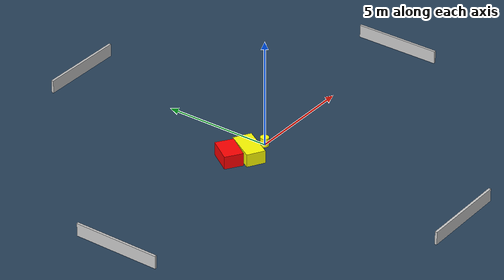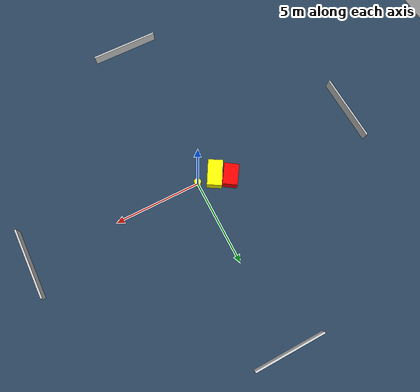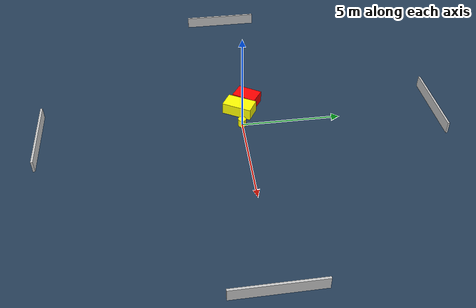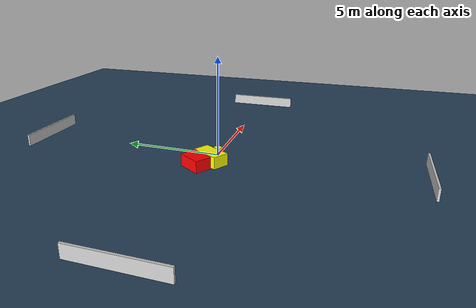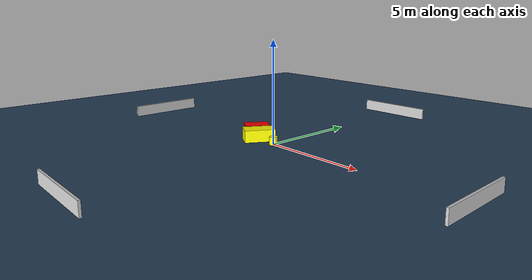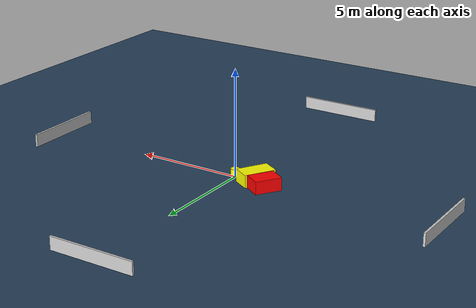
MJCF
<?xml version="1.0" ?>
<mujoco model="generated_environment">
  <option timestep="0.01" integrator="RK4" cone="elliptic"/>
  <default>
    <geom density="1"/>
  </default>
  <asset>
    <texture builtin="gradient" height="3072" name="skybox" rgb1="0.3 0.5 0.7" rgb2="0 0 0" type="skybox" width="512"/>
    <texture builtin="checker" height="300" name="groundplane" rgb1="0.2 0.3 0.4" rgb2="0.1 0.2 0.3" type="2d" width="300"/>
    <material name="groundplane" reflectance="0.2" texrepeat="5 5" texture="groundplane"/>
  </asset>
  <worldbody>
    <light dir="0 0 -1" directional="true" pos="0 0 1.5"/>
    <geom condim="3" friction="0.5 0.005 0.001" material="groundplane" name="floor" pos="0 0 0" size="0 0 0.05" type="plane"/>
    <body name="walls">
      <geom name="wall_1" condim="4" pos="-10.0 0.0 0.3" rgba="0.800000011920929 0.800000011920929 0.800000011920929 1.0" size="0.05 2.0 0.3" type="box"/>
      <geom name="wall_2" condim="4" pos="10.0 0.0 0.3" rgba="0.800000011920929 0.800000011920929 0.800000011920929 1.0" size="0.05 2.0 0.3" type="box"/>
      <geom name="wall_3" condim="4" pos="0.0 -10.0 0.3" rgba="0.800000011920929 0.800000011920929 0.800000011920929 1.0" size="2.0 0.05 0.3" type="box"/>
      <geom name="wall_4" condim="4" pos="0.0 10.0 0.3" rgba="0.800000011920929 0.800000011920929 0.800000011920929 1.0" size="2.0 0.05 0.3" type="box"/>
    </body>
    <body name="robot">
      <joint name="joint_x" type="slide" pos="0 0 0" axis="1 0 0"/>
      <joint name="joint_y" type="slide" pos="0 0 0" axis="0 1 0"/>
      <geom name="robot" type="cylinder" pos="0.0 0.0 0.2" size="0.2 0.2 0.0" mass="5.0" friction="1.0 0.005 0.0001" condim="4" rgba="1.0 1.0 0.0 1.0"/>
    </body>
    <body name="obstacle_1_movable">
      <geom name="obstacle_1_movable" condim="4" pos="-1.0943254144607117 0.01184658394221263 0.3" euler="0 0 239.48397641222815" friction="0.0 0.005 0.001" rgba="1.0 1.0 0.0 1.0" size="0.758465473224762 0.4272132793991072 0.3" type="box" mass="0.1"/>
      <joint type="free"/>
    </body>
    <body name="obstacle_2_static">
      <geom name="obstacle_2_static" condim="4" pos="-1.8387284487527789 0.5043044652731438 0.3" euler="0 0 56.25801500260617" friction="0.0 0.005 0.001" rgba="1.0 0.0 0.0 1.0" size="0.6236636990824647 0.4275865807989623 0.3" type="box"/>
    </body>
  </worldbody>
  <actuator>
    <motor name="actuator_x" joint="joint_x" gear="1" ctrlrange="-1 1"/>
    <motor name="actuator_y" joint="joint_y" gear="1" ctrlrange="-1 1"/>
  </actuator>
</mujoco>
